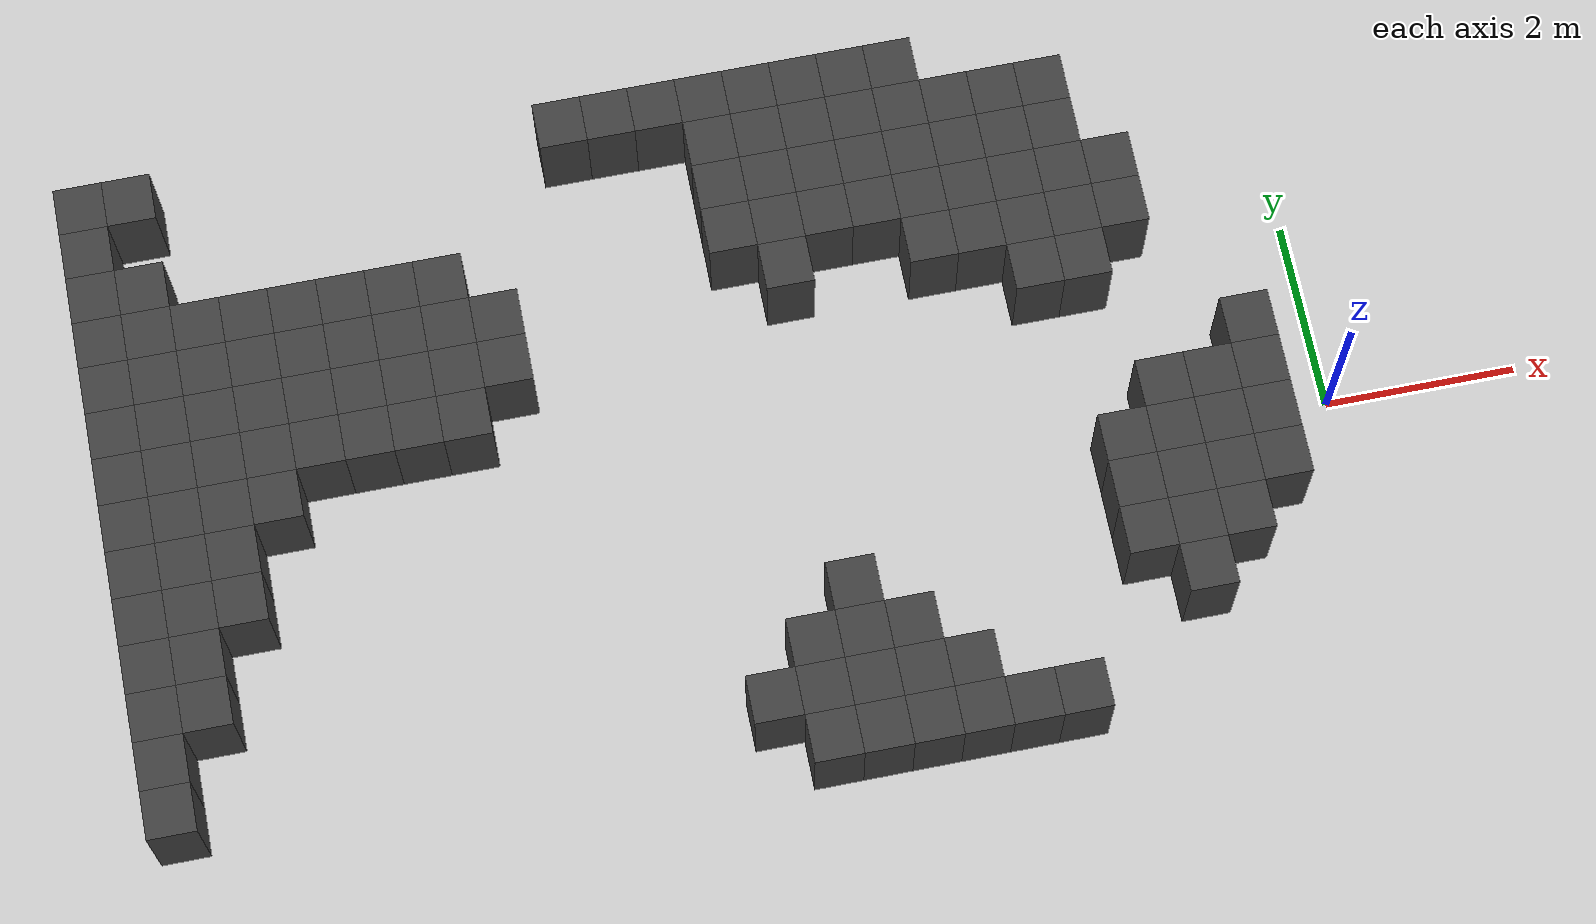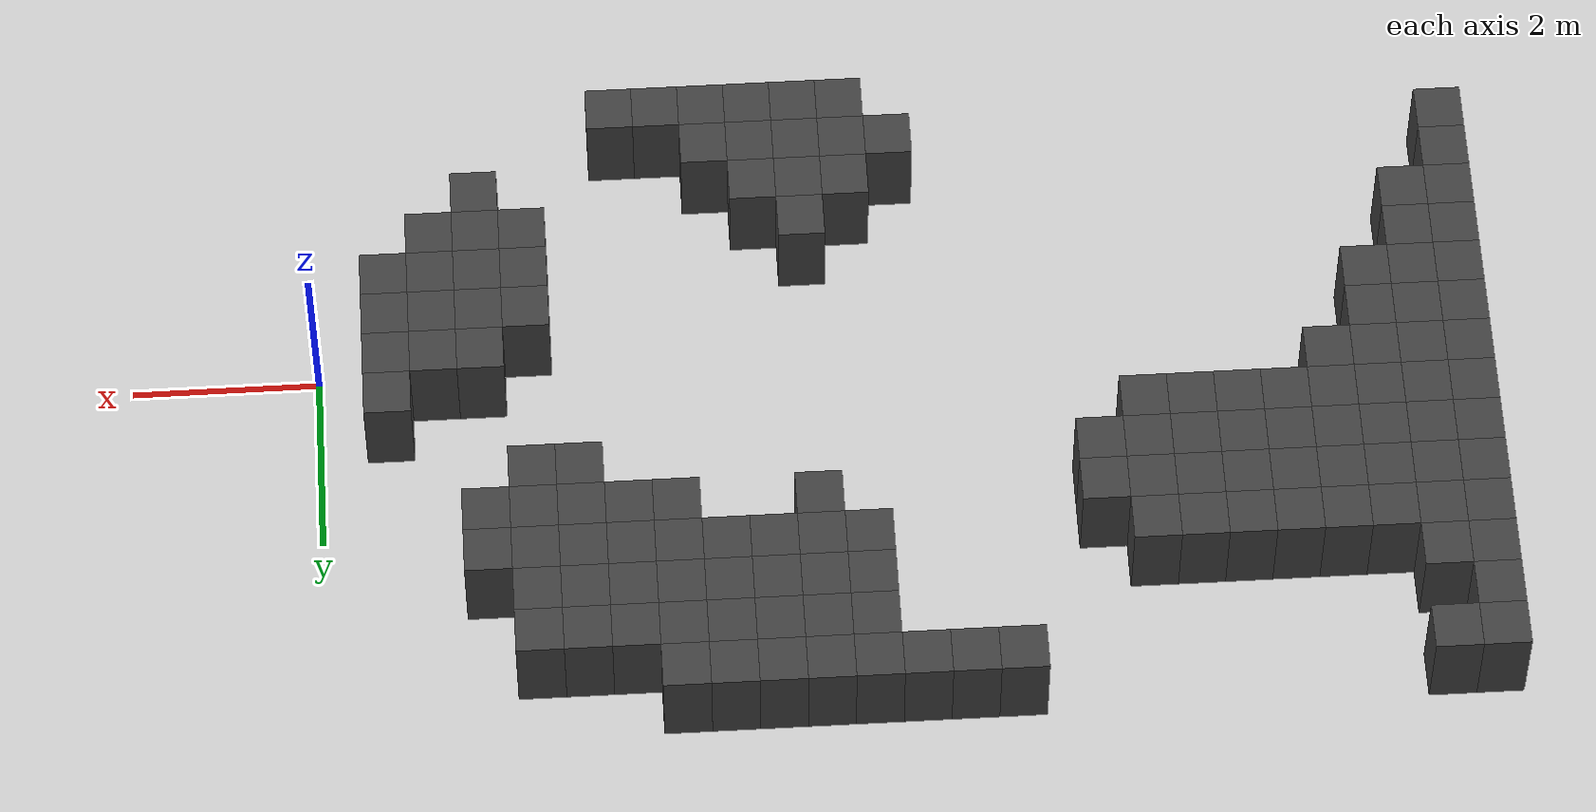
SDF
<sdf version="1.7">
 <world name="map_9544">
  <model name="ground_plane">
   <static>true</static>
   <link name="link">
    <collision name="collision">
     <geometry><plane><normal>0 0 1</normal><size>200 200</size></plane></geometry>
    </collision>
    <visual name="visual">
     <geometry><plane><normal>0 0 1</normal><size>200 200</size></plane></geometry>
     <material><ambient>0.8 0.8 0.8 1</ambient><diffuse>0.8 0.8 0.8 1</diffuse></material>
    </visual>
   </link>
  </model>
  <model name="maze_environment">
   <static>true</static>
   <link name="wall_266">
    <pose>-12.250 4.250 0.500 0 0 0</pose>
    <collision name="col"><geometry><box><size>0.5 0.5 1.0</size></box></geometry></collision>
    <visual name="vis">
     <geometry><box><size>0.5 0.5 1.0</size></box></geometry>
     <material><ambient>0.15 0.15 0.15 1</ambient><diffuse>0.25 0.25 0.25 1</diffuse></material>
    </visual>
   </link>
   <link name="wall_267">
    <pose>-11.750 4.250 0.500 0 0 0</pose>
    <collision name="col"><geometry><box><size>0.5 0.5 1.0</size></box></geometry></collision>
    <visual name="vis">
     <geometry><box><size>0.5 0.5 1.0</size></box></geometry>
     <material><ambient>0.15 0.15 0.15 1</ambient><diffuse>0.25 0.25 0.25 1</diffuse></material>
    </visual>
   </link>
   <link name="wall_268">
    <pose>-7.250 4.250 0.500 0 0 0</pose>
    <collision name="col"><geometry><box><size>0.5 0.5 1.0</size></box></geometry></collision>
    <visual name="vis">
     <geometry><box><size>0.5 0.5 1.0</size></box></geometry>
     <material><ambient>0.15 0.15 0.15 1</ambient><diffuse>0.25 0.25 0.25 1</diffuse></material>
    </visual>
   </link>
   <link name="wall_269">
    <pose>-6.750 4.250 0.500 0 0 0</pose>
    <collision name="col"><geometry><box><size>0.5 0.5 1.0</size></box></geometry></collision>
    <visual name="vis">
     <geometry><box><size>0.5 0.5 1.0</size></box></geometry>
     <material><ambient>0.15 0.15 0.15 1</ambient><diffuse>0.25 0.25 0.25 1</diffuse></material>
    </visual>
   </link>
   <link name="wall_270">
    <pose>-6.250 4.250 0.500 0 0 0</pose>
    <collision name="col"><geometry><box><size>0.5 0.5 1.0</size></box></geometry></collision>
    <visual name="vis">
     <geometry><box><size>0.5 0.5 1.0</size></box></geometry>
     <material><ambient>0.15 0.15 0.15 1</ambient><diffuse>0.25 0.25 0.25 1</diffuse></material>
    </visual>
   </link>
   <link name="wall_271">
    <pose>-5.750 4.250 0.500 0 0 0</pose>
    <collision name="col"><geometry><box><size>0.5 0.5 1.0</size></box></geometry></collision>
    <visual name="vis">
     <geometry><box><size>0.5 0.5 1.0</size></box></geometry>
     <material><ambient>0.15 0.15 0.15 1</ambient><diffuse>0.25 0.25 0.25 1</diffuse></material>
    </visual>
   </link>
   <link name="wall_272">
    <pose>-5.250 4.250 0.500 0 0 0</pose>
    <collision name="col"><geometry><box><size>0.5 0.5 1.0</size></box></geometry></collision>
    <visual name="vis">
     <geometry><box><size>0.5 0.5 1.0</size></box></geometry>
     <material><ambient>0.15 0.15 0.15 1</ambient><diffuse>0.25 0.25 0.25 1</diffuse></material>
    </visual>
   </link>
   <link name="wall_273">
    <pose>-4.750 4.250 0.500 0 0 0</pose>
    <collision name="col"><geometry><box><size>0.5 0.5 1.0</size></box></geometry></collision>
    <visual name="vis">
     <geometry><box><size>0.5 0.5 1.0</size></box></geometry>
     <material><ambient>0.15 0.15 0.15 1</ambient><diffuse>0.25 0.25 0.25 1</diffuse></material>
    </visual>
   </link>
   <link name="wall_274">
    <pose>-4.250 4.250 0.500 0 0 0</pose>
    <collision name="col"><geometry><box><size>0.5 0.5 1.0</size></box></geometry></collision>
    <visual name="vis">
     <geometry><box><size>0.5 0.5 1.0</size></box></geometry>
     <material><ambient>0.15 0.15 0.15 1</ambient><diffuse>0.25 0.25 0.25 1</diffuse></material>
    </visual>
   </link>
   <link name="wall_275">
    <pose>-3.750 4.250 0.500 0 0 0</pose>
    <collision name="col"><geometry><box><size>0.5 0.5 1.0</size></box></geometry></collision>
    <visual name="vis">
     <geometry><box><size>0.5 0.5 1.0</size></box></geometry>
     <material><ambient>0.15 0.15 0.15 1</ambient><diffuse>0.25 0.25 0.25 1</diffuse></material>
    </visual>
   </link>
   <link name="wall_285">
    <pose>-12.250 3.750 0.500 0 0 0</pose>
    <collision name="col"><geometry><box><size>0.5 0.5 1.0</size></box></geometry></collision>
    <visual name="vis">
     <geometry><box><size>0.5 0.5 1.0</size></box></geometry>
     <material><ambient>0.15 0.15 0.15 1</ambient><diffuse>0.25 0.25 0.25 1</diffuse></material>
    </visual>
   </link>
   <link name="wall_286">
    <pose>-5.750 3.750 0.500 0 0 0</pose>
    <collision name="col"><geometry><box><size>0.5 0.5 1.0</size></box></geometry></collision>
    <visual name="vis">
     <geometry><box><size>0.5 0.5 1.0</size></box></geometry>
     <material><ambient>0.15 0.15 0.15 1</ambient><diffuse>0.25 0.25 0.25 1</diffuse></material>
    </visual>
   </link>
   <link name="wall_287">
    <pose>-5.250 3.750 0.500 0 0 0</pose>
    <collision name="col"><geometry><box><size>0.5 0.5 1.0</size></box></geometry></collision>
    <visual name="vis">
     <geometry><box><size>0.5 0.5 1.0</size></box></geometry>
     <material><ambient>0.15 0.15 0.15 1</ambient><diffuse>0.25 0.25 0.25 1</diffuse></material>
    </visual>
   </link>
   <link name="wall_288">
    <pose>-4.750 3.750 0.500 0 0 0</pose>
    <collision name="col"><geometry><box><size>0.5 0.5 1.0</size></box></geometry></collision>
    <visual name="vis">
     <geometry><box><size>0.5 0.5 1.0</size></box></geometry>
     <material><ambient>0.15 0.15 0.15 1</ambient><diffuse>0.25 0.25 0.25 1</diffuse></material>
    </visual>
   </link>
   <link name="wall_289">
    <pose>-4.250 3.750 0.500 0 0 0</pose>
    <collision name="col"><geometry><box><size>0.5 0.5 1.0</size></box></geometry></collision>
    <visual name="vis">
     <geometry><box><size>0.5 0.5 1.0</size></box></geometry>
     <material><ambient>0.15 0.15 0.15 1</ambient><diffuse>0.25 0.25 0.25 1</diffuse></material>
    </visual>
   </link>
   <link name="wall_290">
    <pose>-3.750 3.750 0.500 0 0 0</pose>
    <collision name="col"><geometry><box><size>0.5 0.5 1.0</size></box></geometry></collision>
    <visual name="vis">
     <geometry><box><size>0.5 0.5 1.0</size></box></geometry>
     <material><ambient>0.15 0.15 0.15 1</ambient><diffuse>0.25 0.25 0.25 1</diffuse></material>
    </visual>
   </link>
   <link name="wall_291">
    <pose>-3.250 3.750 0.500 0 0 0</pose>
    <collision name="col"><geometry><box><size>0.5 0.5 1.0</size></box></geometry></collision>
    <visual name="vis">
     <geometry><box><size>0.5 0.5 1.0</size></box></geometry>
     <material><ambient>0.15 0.15 0.15 1</ambient><diffuse>0.25 0.25 0.25 1</diffuse></material>
    </visual>
   </link>
   <link name="wall_292">
    <pose>-2.750 3.750 0.500 0 0 0</pose>
    <collision name="col"><geometry><box><size>0.5 0.5 1.0</size></box></geometry></collision>
    <visual name="vis">
     <geometry><box><size>0.5 0.5 1.0</size></box></geometry>
     <material><ambient>0.15 0.15 0.15 1</ambient><diffuse>0.25 0.25 0.25 1</diffuse></material>
    </visual>
   </link>
   <link name="wall_293">
    <pose>-2.250 3.750 0.500 0 0 0</pose>
    <collision name="col"><geometry><box><size>0.5 0.5 1.0</size></box></geometry></collision>
    <visual name="vis">
     <geometry><box><size>0.5 0.5 1.0</size></box></geometry>
     <material><ambient>0.15 0.15 0.15 1</ambient><diffuse>0.25 0.25 0.25 1</diffuse></material>
    </visual>
   </link>
   <link name="wall_301">
    <pose>-12.250 3.250 0.500 0 0 0</pose>
    <collision name="col"><geometry><box><size>0.5 0.5 1.0</size></box></geometry></collision>
    <visual name="vis">
     <geometry><box><size>0.5 0.5 1.0</size></box></geometry>
     <material><ambient>0.15 0.15 0.15 1</ambient><diffuse>0.25 0.25 0.25 1</diffuse></material>
    </visual>
   </link>
   <link name="wall_302">
    <pose>-11.750 3.250 0.500 0 0 0</pose>
    <collision name="col"><geometry><box><size>0.5 0.5 1.0</size></box></geometry></collision>
    <visual name="vis">
     <geometry><box><size>0.5 0.5 1.0</size></box></geometry>
     <material><ambient>0.15 0.15 0.15 1</ambient><diffuse>0.25 0.25 0.25 1</diffuse></material>
    </visual>
   </link>
   <link name="wall_303">
    <pose>-5.750 3.250 0.500 0 0 0</pose>
    <collision name="col"><geometry><box><size>0.5 0.5 1.0</size></box></geometry></collision>
    <visual name="vis">
     <geometry><box><size>0.5 0.5 1.0</size></box></geometry>
     <material><ambient>0.15 0.15 0.15 1</ambient><diffuse>0.25 0.25 0.25 1</diffuse></material>
    </visual>
   </link>
   <link name="wall_304">
    <pose>-5.250 3.250 0.500 0 0 0</pose>
    <collision name="col"><geometry><box><size>0.5 0.5 1.0</size></box></geometry></collision>
    <visual name="vis">
     <geometry><box><size>0.5 0.5 1.0</size></box></geometry>
     <material><ambient>0.15 0.15 0.15 1</ambient><diffuse>0.25 0.25 0.25 1</diffuse></material>
    </visual>
   </link>
   <link name="wall_305">
    <pose>-4.750 3.250 0.500 0 0 0</pose>
    <collision name="col"><geometry><box><size>0.5 0.5 1.0</size></box></geometry></collision>
    <visual name="vis">
     <geometry><box><size>0.5 0.5 1.0</size></box></geometry>
     <material><ambient>0.15 0.15 0.15 1</ambient><diffuse>0.25 0.25 0.25 1</diffuse></material>
    </visual>
   </link>
   <link name="wall_306">
    <pose>-4.250 3.250 0.500 0 0 0</pose>
    <collision name="col"><geometry><box><size>0.5 0.5 1.0</size></box></geometry></collision>
    <visual name="vis">
     <geometry><box><size>0.5 0.5 1.0</size></box></geometry>
     <material><ambient>0.15 0.15 0.15 1</ambient><diffuse>0.25 0.25 0.25 1</diffuse></material>
    </visual>
   </link>
   <link name="wall_307">
    <pose>-3.750 3.250 0.500 0 0 0</pose>
    <collision name="col"><geometry><box><size>0.5 0.5 1.0</size></box></geometry></collision>
    <visual name="vis">
     <geometry><box><size>0.5 0.5 1.0</size></box></geometry>
     <material><ambient>0.15 0.15 0.15 1</ambient><diffuse>0.25 0.25 0.25 1</diffuse></material>
    </visual>
   </link>
   <link name="wall_308">
    <pose>-3.250 3.250 0.500 0 0 0</pose>
    <collision name="col"><geometry><box><size>0.5 0.5 1.0</size></box></geometry></collision>
    <visual name="vis">
     <geometry><box><size>0.5 0.5 1.0</size></box></geometry>
     <material><ambient>0.15 0.15 0.15 1</ambient><diffuse>0.25 0.25 0.25 1</diffuse></material>
    </visual>
   </link>
   <link name="wall_309">
    <pose>-2.750 3.250 0.500 0 0 0</pose>
    <collision name="col"><geometry><box><size>0.5 0.5 1.0</size></box></geometry></collision>
    <visual name="vis">
     <geometry><box><size>0.5 0.5 1.0</size></box></geometry>
     <material><ambient>0.15 0.15 0.15 1</ambient><diffuse>0.25 0.25 0.25 1</diffuse></material>
    </visual>
   </link>
   <link name="wall_310">
    <pose>-2.250 3.250 0.500 0 0 0</pose>
    <collision name="col"><geometry><box><size>0.5 0.5 1.0</size></box></geometry></collision>
    <visual name="vis">
     <geometry><box><size>0.5 0.5 1.0</size></box></geometry>
     <material><ambient>0.15 0.15 0.15 1</ambient><diffuse>0.25 0.25 0.25 1</diffuse></material>
    </visual>
   </link>
   <link name="wall_316">
    <pose>-12.250 2.750 0.500 0 0 0</pose>
    <collision name="col"><geometry><box><size>0.5 0.5 1.0</size></box></geometry></collision>
    <visual name="vis">
     <geometry><box><size>0.5 0.5 1.0</size></box></geometry>
     <material><ambient>0.15 0.15 0.15 1</ambient><diffuse>0.25 0.25 0.25 1</diffuse></material>
    </visual>
   </link>
   <link name="wall_317">
    <pose>-11.750 2.750 0.500 0 0 0</pose>
    <collision name="col"><geometry><box><size>0.5 0.5 1.0</size></box></geometry></collision>
    <visual name="vis">
     <geometry><box><size>0.5 0.5 1.0</size></box></geometry>
     <material><ambient>0.15 0.15 0.15 1</ambient><diffuse>0.25 0.25 0.25 1</diffuse></material>
    </visual>
   </link>
   <link name="wall_318">
    <pose>-11.250 2.750 0.500 0 0 0</pose>
    <collision name="col"><geometry><box><size>0.5 0.5 1.0</size></box></geometry></collision>
    <visual name="vis">
     <geometry><box><size>0.5 0.5 1.0</size></box></geometry>
     <material><ambient>0.15 0.15 0.15 1</ambient><diffuse>0.25 0.25 0.25 1</diffuse></material>
    </visual>
   </link>
   <link name="wall_319">
    <pose>-10.750 2.750 0.500 0 0 0</pose>
    <collision name="col"><geometry><box><size>0.5 0.5 1.0</size></box></geometry></collision>
    <visual name="vis">
     <geometry><box><size>0.5 0.5 1.0</size></box></geometry>
     <material><ambient>0.15 0.15 0.15 1</ambient><diffuse>0.25 0.25 0.25 1</diffuse></material>
    </visual>
   </link>
   <link name="wall_320">
    <pose>-10.250 2.750 0.500 0 0 0</pose>
    <collision name="col"><geometry><box><size>0.5 0.5 1.0</size></box></geometry></collision>
    <visual name="vis">
     <geometry><box><size>0.5 0.5 1.0</size></box></geometry>
     <material><ambient>0.15 0.15 0.15 1</ambient><diffuse>0.25 0.25 0.25 1</diffuse></material>
    </visual>
   </link>
   <link name="wall_321">
    <pose>-9.750 2.750 0.500 0 0 0</pose>
    <collision name="col"><geometry><box><size>0.5 0.5 1.0</size></box></geometry></collision>
    <visual name="vis">
     <geometry><box><size>0.5 0.5 1.0</size></box></geometry>
     <material><ambient>0.15 0.15 0.15 1</ambient><diffuse>0.25 0.25 0.25 1</diffuse></material>
    </visual>
   </link>
   <link name="wall_322">
    <pose>-9.250 2.750 0.500 0 0 0</pose>
    <collision name="col"><geometry><box><size>0.5 0.5 1.0</size></box></geometry></collision>
    <visual name="vis">
     <geometry><box><size>0.5 0.5 1.0</size></box></geometry>
     <material><ambient>0.15 0.15 0.15 1</ambient><diffuse>0.25 0.25 0.25 1</diffuse></material>
    </visual>
   </link>
   <link name="wall_323">
    <pose>-8.750 2.750 0.500 0 0 0</pose>
    <collision name="col"><geometry><box><size>0.5 0.5 1.0</size></box></geometry></collision>
    <visual name="vis">
     <geometry><box><size>0.5 0.5 1.0</size></box></geometry>
     <material><ambient>0.15 0.15 0.15 1</ambient><diffuse>0.25 0.25 0.25 1</diffuse></material>
    </visual>
   </link>
   <link name="wall_324">
    <pose>-5.750 2.750 0.500 0 0 0</pose>
    <collision name="col"><geometry><box><size>0.5 0.5 1.0</size></box></geometry></collision>
    <visual name="vis">
     <geometry><box><size>0.5 0.5 1.0</size></box></geometry>
     <material><ambient>0.15 0.15 0.15 1</ambient><diffuse>0.25 0.25 0.25 1</diffuse></material>
    </visual>
   </link>
   <link name="wall_325">
    <pose>-5.250 2.750 0.500 0 0 0</pose>
    <collision name="col"><geometry><box><size>0.5 0.5 1.0</size></box></geometry></collision>
    <visual name="vis">
     <geometry><box><size>0.5 0.5 1.0</size></box></geometry>
     <material><ambient>0.15 0.15 0.15 1</ambient><diffuse>0.25 0.25 0.25 1</diffuse></material>
    </visual>
   </link>
   <link name="wall_326">
    <pose>-4.750 2.750 0.500 0 0 0</pose>
    <collision name="col"><geometry><box><size>0.5 0.5 1.0</size></box></geometry></collision>
    <visual name="vis">
     <geometry><box><size>0.5 0.5 1.0</size></box></geometry>
     <material><ambient>0.15 0.15 0.15 1</ambient><diffuse>0.25 0.25 0.25 1</diffuse></material>
    </visual>
   </link>
   <link name="wall_327">
    <pose>-4.250 2.750 0.500 0 0 0</pose>
    <collision name="col"><geometry><box><size>0.5 0.5 1.0</size></box></geometry></collision>
    <visual name="vis">
     <geometry><box><size>0.5 0.5 1.0</size></box></geometry>
     <material><ambient>0.15 0.15 0.15 1</ambient><diffuse>0.25 0.25 0.25 1</diffuse></material>
    </visual>
   </link>
   <link name="wall_328">
    <pose>-3.750 2.750 0.500 0 0 0</pose>
    <collision name="col"><geometry><box><size>0.5 0.5 1.0</size></box></geometry></collision>
    <visual name="vis">
     <geometry><box><size>0.5 0.5 1.0</size></box></geometry>
     <material><ambient>0.15 0.15 0.15 1</ambient><diffuse>0.25 0.25 0.25 1</diffuse></material>
    </visual>
   </link>
   <link name="wall_329">
    <pose>-3.250 2.750 0.500 0 0 0</pose>
    <collision name="col"><geometry><box><size>0.5 0.5 1.0</size></box></geometry></collision>
    <visual name="vis">
     <geometry><box><size>0.5 0.5 1.0</size></box></geometry>
     <material><ambient>0.15 0.15 0.15 1</ambient><diffuse>0.25 0.25 0.25 1</diffuse></material>
    </visual>
   </link>
   <link name="wall_330">
    <pose>-2.750 2.750 0.500 0 0 0</pose>
    <collision name="col"><geometry><box><size>0.5 0.5 1.0</size></box></geometry></collision>
    <visual name="vis">
     <geometry><box><size>0.5 0.5 1.0</size></box></geometry>
     <material><ambient>0.15 0.15 0.15 1</ambient><diffuse>0.25 0.25 0.25 1</diffuse></material>
    </visual>
   </link>
   <link name="wall_331">
    <pose>-2.250 2.750 0.500 0 0 0</pose>
    <collision name="col"><geometry><box><size>0.5 0.5 1.0</size></box></geometry></collision>
    <visual name="vis">
     <geometry><box><size>0.5 0.5 1.0</size></box></geometry>
     <material><ambient>0.15 0.15 0.15 1</ambient><diffuse>0.25 0.25 0.25 1</diffuse></material>
    </visual>
   </link>
   <link name="wall_332">
    <pose>-1.750 2.750 0.500 0 0 0</pose>
    <collision name="col"><geometry><box><size>0.5 0.5 1.0</size></box></geometry></collision>
    <visual name="vis">
     <geometry><box><size>0.5 0.5 1.0</size></box></geometry>
     <material><ambient>0.15 0.15 0.15 1</ambient><diffuse>0.25 0.25 0.25 1</diffuse></material>
    </visual>
   </link>
   <link name="wall_337">
    <pose>-12.250 2.250 0.500 0 0 0</pose>
    <collision name="col"><geometry><box><size>0.5 0.5 1.0</size></box></geometry></collision>
    <visual name="vis">
     <geometry><box><size>0.5 0.5 1.0</size></box></geometry>
     <material><ambient>0.15 0.15 0.15 1</ambient><diffuse>0.25 0.25 0.25 1</diffuse></material>
    </visual>
   </link>
   <link name="wall_338">
    <pose>-11.750 2.250 0.500 0 0 0</pose>
    <collision name="col"><geometry><box><size>0.5 0.5 1.0</size></box></geometry></collision>
    <visual name="vis">
     <geometry><box><size>0.5 0.5 1.0</size></box></geometry>
     <material><ambient>0.15 0.15 0.15 1</ambient><diffuse>0.25 0.25 0.25 1</diffuse></material>
    </visual>
   </link>
   <link name="wall_339">
    <pose>-11.250 2.250 0.500 0 0 0</pose>
    <collision name="col"><geometry><box><size>0.5 0.5 1.0</size></box></geometry></collision>
    <visual name="vis">
     <geometry><box><size>0.5 0.5 1.0</size></box></geometry>
     <material><ambient>0.15 0.15 0.15 1</ambient><diffuse>0.25 0.25 0.25 1</diffuse></material>
    </visual>
   </link>
   <link name="wall_340">
    <pose>-10.750 2.250 0.500 0 0 0</pose>
    <collision name="col"><geometry><box><size>0.5 0.5 1.0</size></box></geometry></collision>
    <visual name="vis">
     <geometry><box><size>0.5 0.5 1.0</size></box></geometry>
     <material><ambient>0.15 0.15 0.15 1</ambient><diffuse>0.25 0.25 0.25 1</diffuse></material>
    </visual>
   </link>
   <link name="wall_341">
    <pose>-10.250 2.250 0.500 0 0 0</pose>
    <collision name="col"><geometry><box><size>0.5 0.5 1.0</size></box></geometry></collision>
    <visual name="vis">
     <geometry><box><size>0.5 0.5 1.0</size></box></geometry>
     <material><ambient>0.15 0.15 0.15 1</ambient><diffuse>0.25 0.25 0.25 1</diffuse></material>
    </visual>
   </link>
   <link name="wall_342">
    <pose>-9.750 2.250 0.500 0 0 0</pose>
    <collision name="col"><geometry><box><size>0.5 0.5 1.0</size></box></geometry></collision>
    <visual name="vis">
     <geometry><box><size>0.5 0.5 1.0</size></box></geometry>
     <material><ambient>0.15 0.15 0.15 1</ambient><diffuse>0.25 0.25 0.25 1</diffuse></material>
    </visual>
   </link>
   <link name="wall_343">
    <pose>-9.250 2.250 0.500 0 0 0</pose>
    <collision name="col"><geometry><box><size>0.5 0.5 1.0</size></box></geometry></collision>
    <visual name="vis">
     <geometry><box><size>0.5 0.5 1.0</size></box></geometry>
     <material><ambient>0.15 0.15 0.15 1</ambient><diffuse>0.25 0.25 0.25 1</diffuse></material>
    </visual>
   </link>
   <link name="wall_344">
    <pose>-8.750 2.250 0.500 0 0 0</pose>
    <collision name="col"><geometry><box><size>0.5 0.5 1.0</size></box></geometry></collision>
    <visual name="vis">
     <geometry><box><size>0.5 0.5 1.0</size></box></geometry>
     <material><ambient>0.15 0.15 0.15 1</ambient><diffuse>0.25 0.25 0.25 1</diffuse></material>
    </visual>
   </link>
   <link name="wall_345">
    <pose>-8.250 2.250 0.500 0 0 0</pose>
    <collision name="col"><geometry><box><size>0.5 0.5 1.0</size></box></geometry></collision>
    <visual name="vis">
     <geometry><box><size>0.5 0.5 1.0</size></box></geometry>
     <material><ambient>0.15 0.15 0.15 1</ambient><diffuse>0.25 0.25 0.25 1</diffuse></material>
    </visual>
   </link>
   <link name="wall_346">
    <pose>-5.250 2.250 0.500 0 0 0</pose>
    <collision name="col"><geometry><box><size>0.5 0.5 1.0</size></box></geometry></collision>
    <visual name="vis">
     <geometry><box><size>0.5 0.5 1.0</size></box></geometry>
     <material><ambient>0.15 0.15 0.15 1</ambient><diffuse>0.25 0.25 0.25 1</diffuse></material>
    </visual>
   </link>
   <link name="wall_347">
    <pose>-3.750 2.250 0.500 0 0 0</pose>
    <collision name="col"><geometry><box><size>0.5 0.5 1.0</size></box></geometry></collision>
    <visual name="vis">
     <geometry><box><size>0.5 0.5 1.0</size></box></geometry>
     <material><ambient>0.15 0.15 0.15 1</ambient><diffuse>0.25 0.25 0.25 1</diffuse></material>
    </visual>
   </link>
   <link name="wall_348">
    <pose>-3.250 2.250 0.500 0 0 0</pose>
    <collision name="col"><geometry><box><size>0.5 0.5 1.0</size></box></geometry></collision>
    <visual name="vis">
     <geometry><box><size>0.5 0.5 1.0</size></box></geometry>
     <material><ambient>0.15 0.15 0.15 1</ambient><diffuse>0.25 0.25 0.25 1</diffuse></material>
    </visual>
   </link>
   <link name="wall_349">
    <pose>-2.750 2.250 0.500 0 0 0</pose>
    <collision name="col"><geometry><box><size>0.5 0.5 1.0</size></box></geometry></collision>
    <visual name="vis">
     <geometry><box><size>0.5 0.5 1.0</size></box></geometry>
     <material><ambient>0.15 0.15 0.15 1</ambient><diffuse>0.25 0.25 0.25 1</diffuse></material>
    </visual>
   </link>
   <link name="wall_350">
    <pose>-2.250 2.250 0.500 0 0 0</pose>
    <collision name="col"><geometry><box><size>0.5 0.5 1.0</size></box></geometry></collision>
    <visual name="vis">
     <geometry><box><size>0.5 0.5 1.0</size></box></geometry>
     <material><ambient>0.15 0.15 0.15 1</ambient><diffuse>0.25 0.25 0.25 1</diffuse></material>
    </visual>
   </link>
   <link name="wall_351">
    <pose>-1.750 2.250 0.500 0 0 0</pose>
    <collision name="col"><geometry><box><size>0.5 0.5 1.0</size></box></geometry></collision>
    <visual name="vis">
     <geometry><box><size>0.5 0.5 1.0</size></box></geometry>
     <material><ambient>0.15 0.15 0.15 1</ambient><diffuse>0.25 0.25 0.25 1</diffuse></material>
    </visual>
   </link>
   <link name="wall_357">
    <pose>-12.250 1.750 0.500 0 0 0</pose>
    <collision name="col"><geometry><box><size>0.5 0.5 1.0</size></box></geometry></collision>
    <visual name="vis">
     <geometry><box><size>0.5 0.5 1.0</size></box></geometry>
     <material><ambient>0.15 0.15 0.15 1</ambient><diffuse>0.25 0.25 0.25 1</diffuse></material>
    </visual>
   </link>
   <link name="wall_358">
    <pose>-11.750 1.750 0.500 0 0 0</pose>
    <collision name="col"><geometry><box><size>0.5 0.5 1.0</size></box></geometry></collision>
    <visual name="vis">
     <geometry><box><size>0.5 0.5 1.0</size></box></geometry>
     <material><ambient>0.15 0.15 0.15 1</ambient><diffuse>0.25 0.25 0.25 1</diffuse></material>
    </visual>
   </link>
   <link name="wall_359">
    <pose>-11.250 1.750 0.500 0 0 0</pose>
    <collision name="col"><geometry><box><size>0.5 0.5 1.0</size></box></geometry></collision>
    <visual name="vis">
     <geometry><box><size>0.5 0.5 1.0</size></box></geometry>
     <material><ambient>0.15 0.15 0.15 1</ambient><diffuse>0.25 0.25 0.25 1</diffuse></material>
    </visual>
   </link>
   <link name="wall_360">
    <pose>-10.750 1.750 0.500 0 0 0</pose>
    <collision name="col"><geometry><box><size>0.5 0.5 1.0</size></box></geometry></collision>
    <visual name="vis">
     <geometry><box><size>0.5 0.5 1.0</size></box></geometry>
     <material><ambient>0.15 0.15 0.15 1</ambient><diffuse>0.25 0.25 0.25 1</diffuse></material>
    </visual>
   </link>
   <link name="wall_361">
    <pose>-10.250 1.750 0.500 0 0 0</pose>
    <collision name="col"><geometry><box><size>0.5 0.5 1.0</size></box></geometry></collision>
    <visual name="vis">
     <geometry><box><size>0.5 0.5 1.0</size></box></geometry>
     <material><ambient>0.15 0.15 0.15 1</ambient><diffuse>0.25 0.25 0.25 1</diffuse></material>
    </visual>
   </link>
   <link name="wall_362">
    <pose>-9.750 1.750 0.500 0 0 0</pose>
    <collision name="col"><geometry><box><size>0.5 0.5 1.0</size></box></geometry></collision>
    <visual name="vis">
     <geometry><box><size>0.5 0.5 1.0</size></box></geometry>
     <material><ambient>0.15 0.15 0.15 1</ambient><diffuse>0.25 0.25 0.25 1</diffuse></material>
    </visual>
   </link>
   <link name="wall_363">
    <pose>-9.250 1.750 0.500 0 0 0</pose>
    <collision name="col"><geometry><box><size>0.5 0.5 1.0</size></box></geometry></collision>
    <visual name="vis">
     <geometry><box><size>0.5 0.5 1.0</size></box></geometry>
     <material><ambient>0.15 0.15 0.15 1</ambient><diffuse>0.25 0.25 0.25 1</diffuse></material>
    </visual>
   </link>
   <link name="wall_364">
    <pose>-8.750 1.750 0.500 0 0 0</pose>
    <collision name="col"><geometry><box><size>0.5 0.5 1.0</size></box></geometry></collision>
    <visual name="vis">
     <geometry><box><size>0.5 0.5 1.0</size></box></geometry>
     <material><ambient>0.15 0.15 0.15 1</ambient><diffuse>0.25 0.25 0.25 1</diffuse></material>
    </visual>
   </link>
   <link name="wall_365">
    <pose>-8.250 1.750 0.500 0 0 0</pose>
    <collision name="col"><geometry><box><size>0.5 0.5 1.0</size></box></geometry></collision>
    <visual name="vis">
     <geometry><box><size>0.5 0.5 1.0</size></box></geometry>
     <material><ambient>0.15 0.15 0.15 1</ambient><diffuse>0.25 0.25 0.25 1</diffuse></material>
    </visual>
   </link>
   <link name="wall_366">
    <pose>-2.750 1.750 0.500 0 0 0</pose>
    <collision name="col"><geometry><box><size>0.5 0.5 1.0</size></box></geometry></collision>
    <visual name="vis">
     <geometry><box><size>0.5 0.5 1.0</size></box></geometry>
     <material><ambient>0.15 0.15 0.15 1</ambient><diffuse>0.25 0.25 0.25 1</diffuse></material>
    </visual>
   </link>
   <link name="wall_367">
    <pose>-2.250 1.750 0.500 0 0 0</pose>
    <collision name="col"><geometry><box><size>0.5 0.5 1.0</size></box></geometry></collision>
    <visual name="vis">
     <geometry><box><size>0.5 0.5 1.0</size></box></geometry>
     <material><ambient>0.15 0.15 0.15 1</ambient><diffuse>0.25 0.25 0.25 1</diffuse></material>
    </visual>
   </link>
   <link name="wall_375">
    <pose>-12.250 1.250 0.500 0 0 0</pose>
    <collision name="col"><geometry><box><size>0.5 0.5 1.0</size></box></geometry></collision>
    <visual name="vis">
     <geometry><box><size>0.5 0.5 1.0</size></box></geometry>
     <material><ambient>0.15 0.15 0.15 1</ambient><diffuse>0.25 0.25 0.25 1</diffuse></material>
    </visual>
   </link>
   <link name="wall_376">
    <pose>-11.750 1.250 0.500 0 0 0</pose>
    <collision name="col"><geometry><box><size>0.5 0.5 1.0</size></box></geometry></collision>
    <visual name="vis">
     <geometry><box><size>0.5 0.5 1.0</size></box></geometry>
     <material><ambient>0.15 0.15 0.15 1</ambient><diffuse>0.25 0.25 0.25 1</diffuse></material>
    </visual>
   </link>
   <link name="wall_377">
    <pose>-11.250 1.250 0.500 0 0 0</pose>
    <collision name="col"><geometry><box><size>0.5 0.5 1.0</size></box></geometry></collision>
    <visual name="vis">
     <geometry><box><size>0.5 0.5 1.0</size></box></geometry>
     <material><ambient>0.15 0.15 0.15 1</ambient><diffuse>0.25 0.25 0.25 1</diffuse></material>
    </visual>
   </link>
   <link name="wall_378">
    <pose>-10.750 1.250 0.500 0 0 0</pose>
    <collision name="col"><geometry><box><size>0.5 0.5 1.0</size></box></geometry></collision>
    <visual name="vis">
     <geometry><box><size>0.5 0.5 1.0</size></box></geometry>
     <material><ambient>0.15 0.15 0.15 1</ambient><diffuse>0.25 0.25 0.25 1</diffuse></material>
    </visual>
   </link>
   <link name="wall_379">
    <pose>-10.250 1.250 0.500 0 0 0</pose>
    <collision name="col"><geometry><box><size>0.5 0.5 1.0</size></box></geometry></collision>
    <visual name="vis">
     <geometry><box><size>0.5 0.5 1.0</size></box></geometry>
     <material><ambient>0.15 0.15 0.15 1</ambient><diffuse>0.25 0.25 0.25 1</diffuse></material>
    </visual>
   </link>
   <link name="wall_380">
    <pose>-9.750 1.250 0.500 0 0 0</pose>
    <collision name="col"><geometry><box><size>0.5 0.5 1.0</size></box></geometry></collision>
    <visual name="vis">
     <geometry><box><size>0.5 0.5 1.0</size></box></geometry>
     <material><ambient>0.15 0.15 0.15 1</ambient><diffuse>0.25 0.25 0.25 1</diffuse></material>
    </visual>
   </link>
   <link name="wall_381">
    <pose>-9.250 1.250 0.500 0 0 0</pose>
    <collision name="col"><geometry><box><size>0.5 0.5 1.0</size></box></geometry></collision>
    <visual name="vis">
     <geometry><box><size>0.5 0.5 1.0</size></box></geometry>
     <material><ambient>0.15 0.15 0.15 1</ambient><diffuse>0.25 0.25 0.25 1</diffuse></material>
    </visual>
   </link>
   <link name="wall_382">
    <pose>-8.750 1.250 0.500 0 0 0</pose>
    <collision name="col"><geometry><box><size>0.5 0.5 1.0</size></box></geometry></collision>
    <visual name="vis">
     <geometry><box><size>0.5 0.5 1.0</size></box></geometry>
     <material><ambient>0.15 0.15 0.15 1</ambient><diffuse>0.25 0.25 0.25 1</diffuse></material>
    </visual>
   </link>
   <link name="wall_394">
    <pose>-12.250 0.750 0.500 0 0 0</pose>
    <collision name="col"><geometry><box><size>0.5 0.5 1.0</size></box></geometry></collision>
    <visual name="vis">
     <geometry><box><size>0.5 0.5 1.0</size></box></geometry>
     <material><ambient>0.15 0.15 0.15 1</ambient><diffuse>0.25 0.25 0.25 1</diffuse></material>
    </visual>
   </link>
   <link name="wall_395">
    <pose>-11.750 0.750 0.500 0 0 0</pose>
    <collision name="col"><geometry><box><size>0.5 0.5 1.0</size></box></geometry></collision>
    <visual name="vis">
     <geometry><box><size>0.5 0.5 1.0</size></box></geometry>
     <material><ambient>0.15 0.15 0.15 1</ambient><diffuse>0.25 0.25 0.25 1</diffuse></material>
    </visual>
   </link>
   <link name="wall_396">
    <pose>-11.250 0.750 0.500 0 0 0</pose>
    <collision name="col"><geometry><box><size>0.5 0.5 1.0</size></box></geometry></collision>
    <visual name="vis">
     <geometry><box><size>0.5 0.5 1.0</size></box></geometry>
     <material><ambient>0.15 0.15 0.15 1</ambient><diffuse>0.25 0.25 0.25 1</diffuse></material>
    </visual>
   </link>
   <link name="wall_397">
    <pose>-10.750 0.750 0.500 0 0 0</pose>
    <collision name="col"><geometry><box><size>0.5 0.5 1.0</size></box></geometry></collision>
    <visual name="vis">
     <geometry><box><size>0.5 0.5 1.0</size></box></geometry>
     <material><ambient>0.15 0.15 0.15 1</ambient><diffuse>0.25 0.25 0.25 1</diffuse></material>
    </visual>
   </link>
   <link name="wall_398">
    <pose>-0.750 0.750 0.500 0 0 0</pose>
    <collision name="col"><geometry><box><size>0.5 0.5 1.0</size></box></geometry></collision>
    <visual name="vis">
     <geometry><box><size>0.5 0.5 1.0</size></box></geometry>
     <material><ambient>0.15 0.15 0.15 1</ambient><diffuse>0.25 0.25 0.25 1</diffuse></material>
    </visual>
   </link>
   <link name="wall_412">
    <pose>-12.250 0.250 0.500 0 0 0</pose>
    <collision name="col"><geometry><box><size>0.5 0.5 1.0</size></box></geometry></collision>
    <visual name="vis">
     <geometry><box><size>0.5 0.5 1.0</size></box></geometry>
     <material><ambient>0.15 0.15 0.15 1</ambient><diffuse>0.25 0.25 0.25 1</diffuse></material>
    </visual>
   </link>
   <link name="wall_413">
    <pose>-11.750 0.250 0.500 0 0 0</pose>
    <collision name="col"><geometry><box><size>0.5 0.5 1.0</size></box></geometry></collision>
    <visual name="vis">
     <geometry><box><size>0.5 0.5 1.0</size></box></geometry>
     <material><ambient>0.15 0.15 0.15 1</ambient><diffuse>0.25 0.25 0.25 1</diffuse></material>
    </visual>
   </link>
   <link name="wall_414">
    <pose>-11.250 0.250 0.500 0 0 0</pose>
    <collision name="col"><geometry><box><size>0.5 0.5 1.0</size></box></geometry></collision>
    <visual name="vis">
     <geometry><box><size>0.5 0.5 1.0</size></box></geometry>
     <material><ambient>0.15 0.15 0.15 1</ambient><diffuse>0.25 0.25 0.25 1</diffuse></material>
    </visual>
   </link>
   <link name="wall_415">
    <pose>-1.750 0.250 0.500 0 0 0</pose>
    <collision name="col"><geometry><box><size>0.5 0.5 1.0</size></box></geometry></collision>
    <visual name="vis">
     <geometry><box><size>0.5 0.5 1.0</size></box></geometry>
     <material><ambient>0.15 0.15 0.15 1</ambient><diffuse>0.25 0.25 0.25 1</diffuse></material>
    </visual>
   </link>
   <link name="wall_416">
    <pose>-1.250 0.250 0.500 0 0 0</pose>
    <collision name="col"><geometry><box><size>0.5 0.5 1.0</size></box></geometry></collision>
    <visual name="vis">
     <geometry><box><size>0.5 0.5 1.0</size></box></geometry>
     <material><ambient>0.15 0.15 0.15 1</ambient><diffuse>0.25 0.25 0.25 1</diffuse></material>
    </visual>
   </link>
   <link name="wall_417">
    <pose>-0.750 0.250 0.500 0 0 0</pose>
    <collision name="col"><geometry><box><size>0.5 0.5 1.0</size></box></geometry></collision>
    <visual name="vis">
     <geometry><box><size>0.5 0.5 1.0</size></box></geometry>
     <material><ambient>0.15 0.15 0.15 1</ambient><diffuse>0.25 0.25 0.25 1</diffuse></material>
    </visual>
   </link>
   <link name="wall_428">
    <pose>-12.250 -0.250 0.500 0 0 0</pose>
    <collision name="col"><geometry><box><size>0.5 0.5 1.0</size></box></geometry></collision>
    <visual name="vis">
     <geometry><box><size>0.5 0.5 1.0</size></box></geometry>
     <material><ambient>0.15 0.15 0.15 1</ambient><diffuse>0.25 0.25 0.25 1</diffuse></material>
    </visual>
   </link>
   <link name="wall_429">
    <pose>-11.750 -0.250 0.500 0 0 0</pose>
    <collision name="col"><geometry><box><size>0.5 0.5 1.0</size></box></geometry></collision>
    <visual name="vis">
     <geometry><box><size>0.5 0.5 1.0</size></box></geometry>
     <material><ambient>0.15 0.15 0.15 1</ambient><diffuse>0.25 0.25 0.25 1</diffuse></material>
    </visual>
   </link>
   <link name="wall_430">
    <pose>-11.250 -0.250 0.500 0 0 0</pose>
    <collision name="col"><geometry><box><size>0.5 0.5 1.0</size></box></geometry></collision>
    <visual name="vis">
     <geometry><box><size>0.5 0.5 1.0</size></box></geometry>
     <material><ambient>0.15 0.15 0.15 1</ambient><diffuse>0.25 0.25 0.25 1</diffuse></material>
    </visual>
   </link>
   <link name="wall_431">
    <pose>-2.250 -0.250 0.500 0 0 0</pose>
    <collision name="col"><geometry><box><size>0.5 0.5 1.0</size></box></geometry></collision>
    <visual name="vis">
     <geometry><box><size>0.5 0.5 1.0</size></box></geometry>
     <material><ambient>0.15 0.15 0.15 1</ambient><diffuse>0.25 0.25 0.25 1</diffuse></material>
    </visual>
   </link>
   <link name="wall_432">
    <pose>-1.750 -0.250 0.500 0 0 0</pose>
    <collision name="col"><geometry><box><size>0.5 0.5 1.0</size></box></geometry></collision>
    <visual name="vis">
     <geometry><box><size>0.5 0.5 1.0</size></box></geometry>
     <material><ambient>0.15 0.15 0.15 1</ambient><diffuse>0.25 0.25 0.25 1</diffuse></material>
    </visual>
   </link>
   <link name="wall_433">
    <pose>-1.250 -0.250 0.500 0 0 0</pose>
    <collision name="col"><geometry><box><size>0.5 0.5 1.0</size></box></geometry></collision>
    <visual name="vis">
     <geometry><box><size>0.5 0.5 1.0</size></box></geometry>
     <material><ambient>0.15 0.15 0.15 1</ambient><diffuse>0.25 0.25 0.25 1</diffuse></material>
    </visual>
   </link>
   <link name="wall_434">
    <pose>-0.750 -0.250 0.500 0 0 0</pose>
    <collision name="col"><geometry><box><size>0.5 0.5 1.0</size></box></geometry></collision>
    <visual name="vis">
     <geometry><box><size>0.5 0.5 1.0</size></box></geometry>
     <material><ambient>0.15 0.15 0.15 1</ambient><diffuse>0.25 0.25 0.25 1</diffuse></material>
    </visual>
   </link>
   <link name="wall_442">
    <pose>-12.250 -0.750 0.500 0 0 0</pose>
    <collision name="col"><geometry><box><size>0.5 0.5 1.0</size></box></geometry></collision>
    <visual name="vis">
     <geometry><box><size>0.5 0.5 1.0</size></box></geometry>
     <material><ambient>0.15 0.15 0.15 1</ambient><diffuse>0.25 0.25 0.25 1</diffuse></material>
    </visual>
   </link>
   <link name="wall_443">
    <pose>-11.750 -0.750 0.500 0 0 0</pose>
    <collision name="col"><geometry><box><size>0.5 0.5 1.0</size></box></geometry></collision>
    <visual name="vis">
     <geometry><box><size>0.5 0.5 1.0</size></box></geometry>
     <material><ambient>0.15 0.15 0.15 1</ambient><diffuse>0.25 0.25 0.25 1</diffuse></material>
    </visual>
   </link>
   <link name="wall_444">
    <pose>-2.250 -0.750 0.500 0 0 0</pose>
    <collision name="col"><geometry><box><size>0.5 0.5 1.0</size></box></geometry></collision>
    <visual name="vis">
     <geometry><box><size>0.5 0.5 1.0</size></box></geometry>
     <material><ambient>0.15 0.15 0.15 1</ambient><diffuse>0.25 0.25 0.25 1</diffuse></material>
    </visual>
   </link>
   <link name="wall_445">
    <pose>-1.750 -0.750 0.500 0 0 0</pose>
    <collision name="col"><geometry><box><size>0.5 0.5 1.0</size></box></geometry></collision>
    <visual name="vis">
     <geometry><box><size>0.5 0.5 1.0</size></box></geometry>
     <material><ambient>0.15 0.15 0.15 1</ambient><diffuse>0.25 0.25 0.25 1</diffuse></material>
    </visual>
   </link>
   <link name="wall_446">
    <pose>-1.250 -0.750 0.500 0 0 0</pose>
    <collision name="col"><geometry><box><size>0.5 0.5 1.0</size></box></geometry></collision>
    <visual name="vis">
     <geometry><box><size>0.5 0.5 1.0</size></box></geometry>
     <material><ambient>0.15 0.15 0.15 1</ambient><diffuse>0.25 0.25 0.25 1</diffuse></material>
    </visual>
   </link>
   <link name="wall_447">
    <pose>-0.750 -0.750 0.500 0 0 0</pose>
    <collision name="col"><geometry><box><size>0.5 0.5 1.0</size></box></geometry></collision>
    <visual name="vis">
     <geometry><box><size>0.5 0.5 1.0</size></box></geometry>
     <material><ambient>0.15 0.15 0.15 1</ambient><diffuse>0.25 0.25 0.25 1</diffuse></material>
    </visual>
   </link>
   <link name="wall_456">
    <pose>-12.250 -1.250 0.500 0 0 0</pose>
    <collision name="col"><geometry><box><size>0.5 0.5 1.0</size></box></geometry></collision>
    <visual name="vis">
     <geometry><box><size>0.5 0.5 1.0</size></box></geometry>
     <material><ambient>0.15 0.15 0.15 1</ambient><diffuse>0.25 0.25 0.25 1</diffuse></material>
    </visual>
   </link>
   <link name="wall_457">
    <pose>-11.750 -1.250 0.500 0 0 0</pose>
    <collision name="col"><geometry><box><size>0.5 0.5 1.0</size></box></geometry></collision>
    <visual name="vis">
     <geometry><box><size>0.5 0.5 1.0</size></box></geometry>
     <material><ambient>0.15 0.15 0.15 1</ambient><diffuse>0.25 0.25 0.25 1</diffuse></material>
    </visual>
   </link>
   <link name="wall_458">
    <pose>-5.250 -1.250 0.500 0 0 0</pose>
    <collision name="col"><geometry><box><size>0.5 0.5 1.0</size></box></geometry></collision>
    <visual name="vis">
     <geometry><box><size>0.5 0.5 1.0</size></box></geometry>
     <material><ambient>0.15 0.15 0.15 1</ambient><diffuse>0.25 0.25 0.25 1</diffuse></material>
    </visual>
   </link>
   <link name="wall_459">
    <pose>-2.250 -1.250 0.500 0 0 0</pose>
    <collision name="col"><geometry><box><size>0.5 0.5 1.0</size></box></geometry></collision>
    <visual name="vis">
     <geometry><box><size>0.5 0.5 1.0</size></box></geometry>
     <material><ambient>0.15 0.15 0.15 1</ambient><diffuse>0.25 0.25 0.25 1</diffuse></material>
    </visual>
   </link>
   <link name="wall_460">
    <pose>-1.750 -1.250 0.500 0 0 0</pose>
    <collision name="col"><geometry><box><size>0.5 0.5 1.0</size></box></geometry></collision>
    <visual name="vis">
     <geometry><box><size>0.5 0.5 1.0</size></box></geometry>
     <material><ambient>0.15 0.15 0.15 1</ambient><diffuse>0.25 0.25 0.25 1</diffuse></material>
    </visual>
   </link>
   <link name="wall_461">
    <pose>-1.250 -1.250 0.500 0 0 0</pose>
    <collision name="col"><geometry><box><size>0.5 0.5 1.0</size></box></geometry></collision>
    <visual name="vis">
     <geometry><box><size>0.5 0.5 1.0</size></box></geometry>
     <material><ambient>0.15 0.15 0.15 1</ambient><diffuse>0.25 0.25 0.25 1</diffuse></material>
    </visual>
   </link>
   <link name="wall_470">
    <pose>-12.250 -1.750 0.500 0 0 0</pose>
    <collision name="col"><geometry><box><size>0.5 0.5 1.0</size></box></geometry></collision>
    <visual name="vis">
     <geometry><box><size>0.5 0.5 1.0</size></box></geometry>
     <material><ambient>0.15 0.15 0.15 1</ambient><diffuse>0.25 0.25 0.25 1</diffuse></material>
    </visual>
   </link>
   <link name="wall_471">
    <pose>-5.750 -1.750 0.500 0 0 0</pose>
    <collision name="col"><geometry><box><size>0.5 0.5 1.0</size></box></geometry></collision>
    <visual name="vis">
     <geometry><box><size>0.5 0.5 1.0</size></box></geometry>
     <material><ambient>0.15 0.15 0.15 1</ambient><diffuse>0.25 0.25 0.25 1</diffuse></material>
    </visual>
   </link>
   <link name="wall_472">
    <pose>-5.250 -1.750 0.500 0 0 0</pose>
    <collision name="col"><geometry><box><size>0.5 0.5 1.0</size></box></geometry></collision>
    <visual name="vis">
     <geometry><box><size>0.5 0.5 1.0</size></box></geometry>
     <material><ambient>0.15 0.15 0.15 1</ambient><diffuse>0.25 0.25 0.25 1</diffuse></material>
    </visual>
   </link>
   <link name="wall_473">
    <pose>-4.750 -1.750 0.500 0 0 0</pose>
    <collision name="col"><geometry><box><size>0.5 0.5 1.0</size></box></geometry></collision>
    <visual name="vis">
     <geometry><box><size>0.5 0.5 1.0</size></box></geometry>
     <material><ambient>0.15 0.15 0.15 1</ambient><diffuse>0.25 0.25 0.25 1</diffuse></material>
    </visual>
   </link>
   <link name="wall_474">
    <pose>-1.750 -1.750 0.500 0 0 0</pose>
    <collision name="col"><geometry><box><size>0.5 0.5 1.0</size></box></geometry></collision>
    <visual name="vis">
     <geometry><box><size>0.5 0.5 1.0</size></box></geometry>
     <material><ambient>0.15 0.15 0.15 1</ambient><diffuse>0.25 0.25 0.25 1</diffuse></material>
    </visual>
   </link>
   <link name="wall_484">
    <pose>-12.250 -2.250 0.500 0 0 0</pose>
    <collision name="col"><geometry><box><size>0.5 0.5 1.0</size></box></geometry></collision>
    <visual name="vis">
     <geometry><box><size>0.5 0.5 1.0</size></box></geometry>
     <material><ambient>0.15 0.15 0.15 1</ambient><diffuse>0.25 0.25 0.25 1</diffuse></material>
    </visual>
   </link>
   <link name="wall_485">
    <pose>-6.250 -2.250 0.500 0 0 0</pose>
    <collision name="col"><geometry><box><size>0.5 0.5 1.0</size></box></geometry></collision>
    <visual name="vis">
     <geometry><box><size>0.5 0.5 1.0</size></box></geometry>
     <material><ambient>0.15 0.15 0.15 1</ambient><diffuse>0.25 0.25 0.25 1</diffuse></material>
    </visual>
   </link>
   <link name="wall_486">
    <pose>-5.750 -2.250 0.500 0 0 0</pose>
    <collision name="col"><geometry><box><size>0.5 0.5 1.0</size></box></geometry></collision>
    <visual name="vis">
     <geometry><box><size>0.5 0.5 1.0</size></box></geometry>
     <material><ambient>0.15 0.15 0.15 1</ambient><diffuse>0.25 0.25 0.25 1</diffuse></material>
    </visual>
   </link>
   <link name="wall_487">
    <pose>-5.250 -2.250 0.500 0 0 0</pose>
    <collision name="col"><geometry><box><size>0.5 0.5 1.0</size></box></geometry></collision>
    <visual name="vis">
     <geometry><box><size>0.5 0.5 1.0</size></box></geometry>
     <material><ambient>0.15 0.15 0.15 1</ambient><diffuse>0.25 0.25 0.25 1</diffuse></material>
    </visual>
   </link>
   <link name="wall_488">
    <pose>-4.750 -2.250 0.500 0 0 0</pose>
    <collision name="col"><geometry><box><size>0.5 0.5 1.0</size></box></geometry></collision>
    <visual name="vis">
     <geometry><box><size>0.5 0.5 1.0</size></box></geometry>
     <material><ambient>0.15 0.15 0.15 1</ambient><diffuse>0.25 0.25 0.25 1</diffuse></material>
    </visual>
   </link>
   <link name="wall_489">
    <pose>-4.250 -2.250 0.500 0 0 0</pose>
    <collision name="col"><geometry><box><size>0.5 0.5 1.0</size></box></geometry></collision>
    <visual name="vis">
     <geometry><box><size>0.5 0.5 1.0</size></box></geometry>
     <material><ambient>0.15 0.15 0.15 1</ambient><diffuse>0.25 0.25 0.25 1</diffuse></material>
    </visual>
   </link>
   <link name="wall_501">
    <pose>-5.750 -2.750 0.500 0 0 0</pose>
    <collision name="col"><geometry><box><size>0.5 0.5 1.0</size></box></geometry></collision>
    <visual name="vis">
     <geometry><box><size>0.5 0.5 1.0</size></box></geometry>
     <material><ambient>0.15 0.15 0.15 1</ambient><diffuse>0.25 0.25 0.25 1</diffuse></material>
    </visual>
   </link>
   <link name="wall_502">
    <pose>-5.250 -2.750 0.500 0 0 0</pose>
    <collision name="col"><geometry><box><size>0.5 0.5 1.0</size></box></geometry></collision>
    <visual name="vis">
     <geometry><box><size>0.5 0.5 1.0</size></box></geometry>
     <material><ambient>0.15 0.15 0.15 1</ambient><diffuse>0.25 0.25 0.25 1</diffuse></material>
    </visual>
   </link>
   <link name="wall_503">
    <pose>-4.750 -2.750 0.500 0 0 0</pose>
    <collision name="col"><geometry><box><size>0.5 0.5 1.0</size></box></geometry></collision>
    <visual name="vis">
     <geometry><box><size>0.5 0.5 1.0</size></box></geometry>
     <material><ambient>0.15 0.15 0.15 1</ambient><diffuse>0.25 0.25 0.25 1</diffuse></material>
    </visual>
   </link>
   <link name="wall_504">
    <pose>-4.250 -2.750 0.500 0 0 0</pose>
    <collision name="col"><geometry><box><size>0.5 0.5 1.0</size></box></geometry></collision>
    <visual name="vis">
     <geometry><box><size>0.5 0.5 1.0</size></box></geometry>
     <material><ambient>0.15 0.15 0.15 1</ambient><diffuse>0.25 0.25 0.25 1</diffuse></material>
    </visual>
   </link>
   <link name="wall_505">
    <pose>-3.750 -2.750 0.500 0 0 0</pose>
    <collision name="col"><geometry><box><size>0.5 0.5 1.0</size></box></geometry></collision>
    <visual name="vis">
     <geometry><box><size>0.5 0.5 1.0</size></box></geometry>
     <material><ambient>0.15 0.15 0.15 1</ambient><diffuse>0.25 0.25 0.25 1</diffuse></material>
    </visual>
   </link>
   <link name="wall_506">
    <pose>-3.250 -2.750 0.500 0 0 0</pose>
    <collision name="col"><geometry><box><size>0.5 0.5 1.0</size></box></geometry></collision>
    <visual name="vis">
     <geometry><box><size>0.5 0.5 1.0</size></box></geometry>
     <material><ambient>0.15 0.15 0.15 1</ambient><diffuse>0.25 0.25 0.25 1</diffuse></material>
    </visual>
   </link>
  </model>
 </world>
</sdf>
